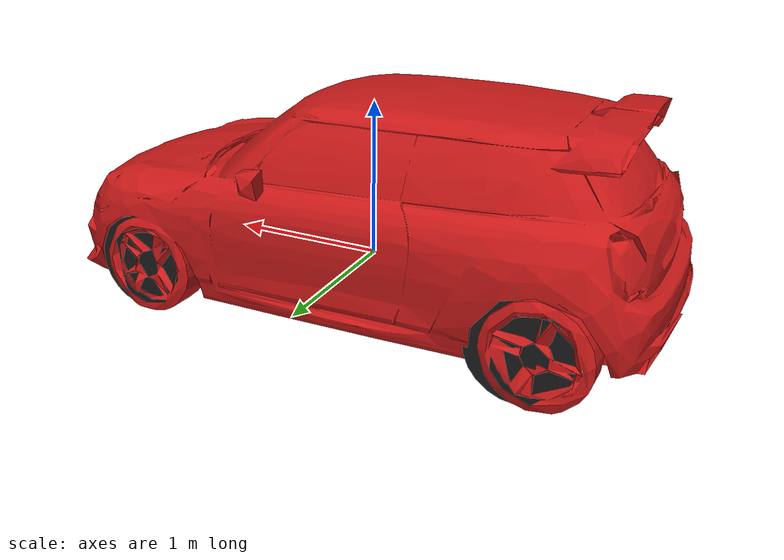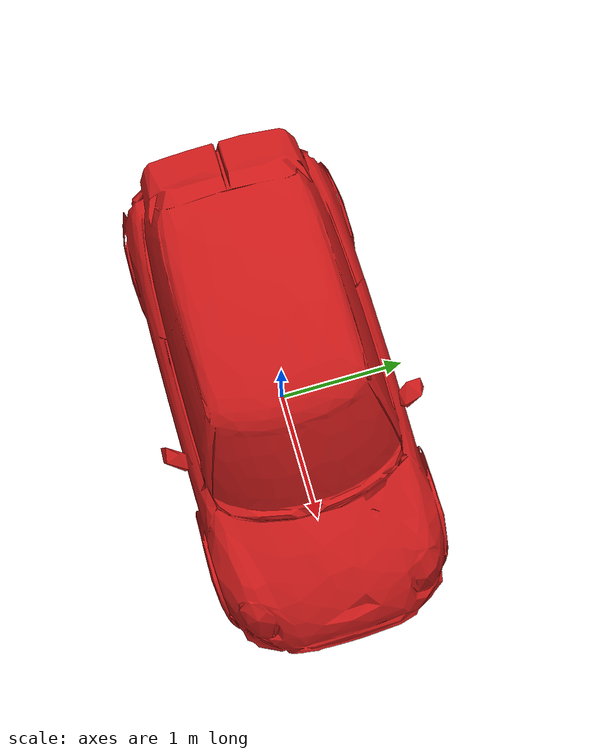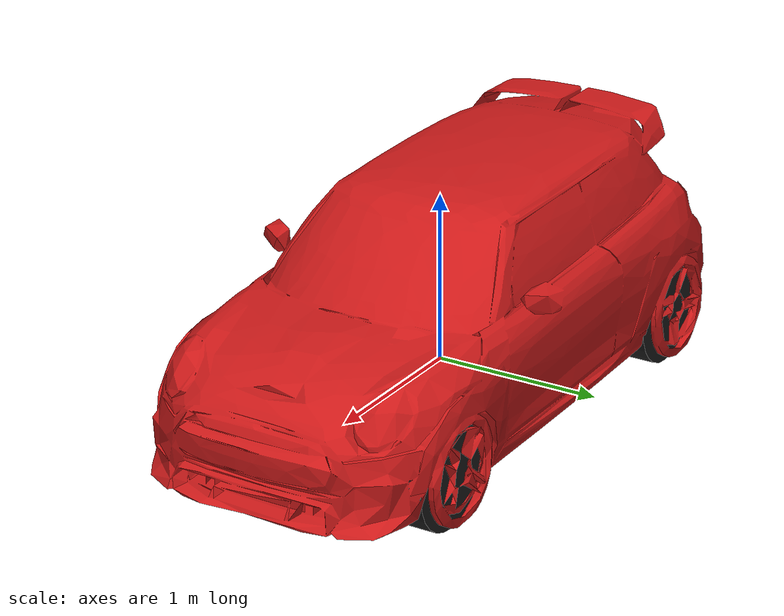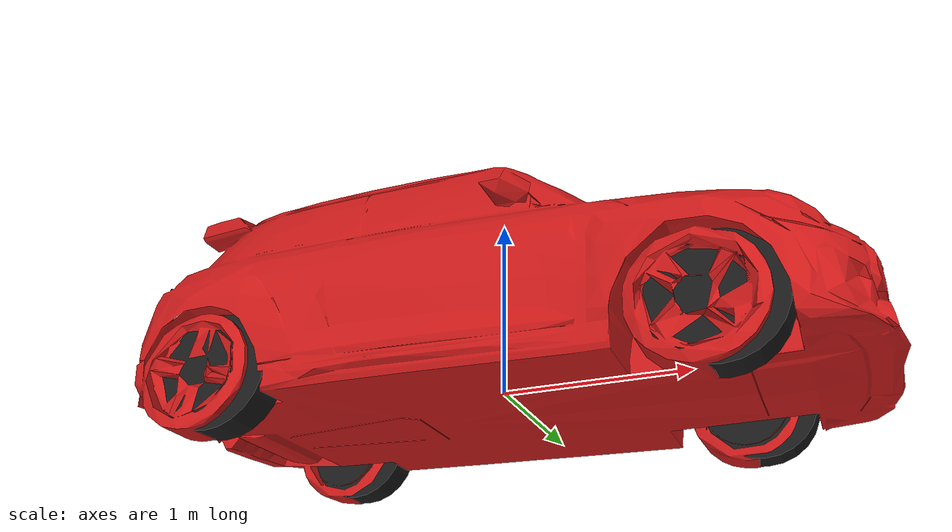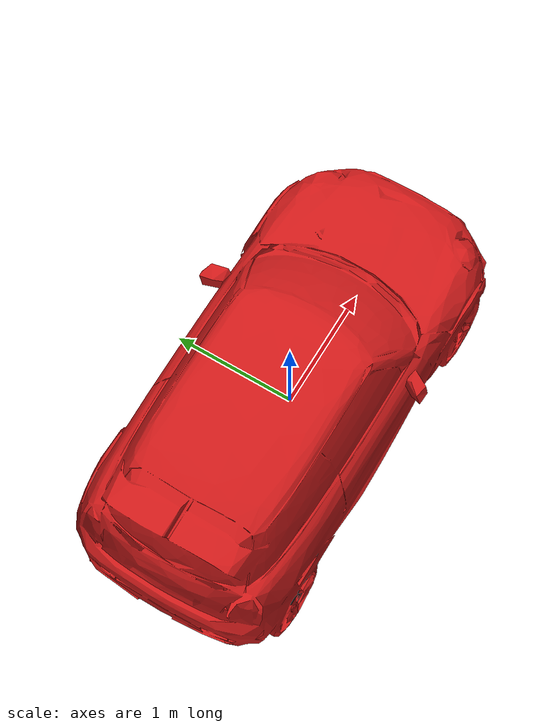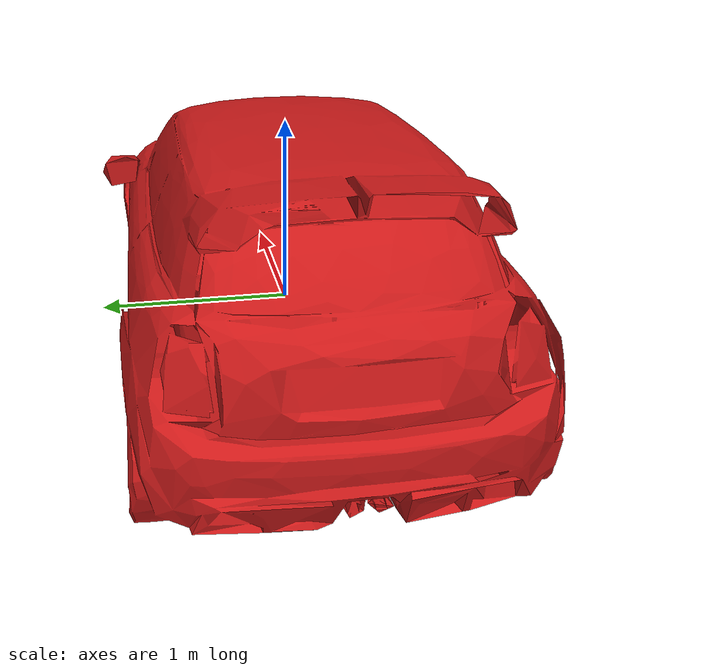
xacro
<?xml version="1.0"?>
<robot name="mini_r56" xmlns:xacro="http://ros.org/wiki/xacro">

  <!-- 1. VEHICLE DIMENSIONS & CONSTANTS                                      -->
  <xacro:property name="wheelbase" value="2.467"/>
  <xacro:property name="track_width_front" value="1.459"/>
  <xacro:property name="track_width_rear" value="1.467"/>
  <xacro:property name="wheel_radius" value="0.3043"/>
  <xacro:property name="wheel_width" value="0.175"/>
  <xacro:property name="wheel_mass" value="15.0"/>

  <!-- Cylindrical Inertia Macro -->
  <xacro:macro name="cylinder_inertia" params="m r h">
    <inertial>
      <mass value="${m}"/>
      <inertia ixx="${(m/12) * (3*r*r + h*h)}" ixy="0" ixz="0"
               iyy="${(m/12) * (3*r*r + h*h)}" iyz="0"
               izz="${(m/2) * (r*r)}"/>
    </inertial>
  </xacro:macro>

  <!-- 2. CORE CHASSIS (BASE LINK)                                            -->
  <link name="base_link">
    <!-- Visual Mesh -->
    <visual>
      <!-- RPY aligns the orientation. XYZ resets the CAD origin to center -->
      <origin xyz="0 0 -0.3" rpy="1.5708 0 1.5708"/>
      <geometry>
        <mesh filename="file://$(find mini_r56_gazebo)/meshes/Mini_body.stl" scale="1 1 1"/>
      </geometry>
      <material name="chili_red"><color rgba="0.8 0.1 0.1 1.0"/></material>
    </visual>

    <!-- Kinematic Collision Box -->
<!-- Kinematic Collision Box -->
    <collision>
      <origin xyz="0 0 0.5" rpy="0 0 0"/>
      <geometry>
        <!-- Shrunk strictly to fit between the front/rear and left/right axles -->
        <box size="2.0 1.0 0.8"/>
      </geometry>
    </collision>
    <!-- Inertial Tensor: Optimized for R56 Dynamics -->
    <inertial>
        <!-- CoM shifted forward (engine bias) and dramatically lowered (eliminates body roll) -->
        <origin xyz="${wheelbase * 0.15} 0 0.05" rpy="0 0 0"/>
        <mass value="1150.0"/>
        <!-- Drastically reduced moment of inertia to eliminate sluggish rotation -->
        <inertia ixx="250.0" ixy="0.0" ixz="0.0" iyy="900.0" iyz="0.0" izz="1100.0"/>
    </inertial>
  </link>

  <!-- 3. FRONT STEERED & DRIVEN WHEELS (MACPHERSON KINEMATICS)               -->
  <xacro:macro name="front_wheel" params="prefix y_offset">
    <!-- Steering Knuckle (Virtual Link) -->
    <link name="${prefix}_steer_link">
      <inertial>
        <mass value="5.0"/>
        <inertia ixx="0.1" ixy="0" ixz="0" iyy="0.1" iyz="0" izz="0.1"/>
      </inertial>
    </link>

<!-- Steering Joint: Zero friction loss for instant go-kart turn-in -->
    <joint name="${prefix}_steering_joint" type="revolute">
      <parent link="base_link"/>
      <child link="${prefix}_steer_link"/>
      <origin xyz="${wheelbase/2} ${y_offset} 0" rpy="0 0 0"/>
      <axis xyz="0 0 1"/>
      <dynamics damping="0.0" friction="0.0"/>
      <!-- Steering agility maximized for instant rack response -->
      <limit lower="-0.88" upper="0.88" effort="10000.0" velocity="1000.0"/>
    </joint>

    <!-- Wheel Physical Link -->
    <link name="${prefix}_wheel_link">
      <visual>
        <origin xyz="0 0 0" rpy="1.5708 0 0"/>
        <geometry><cylinder radius="${wheel_radius}" length="${wheel_width}"/></geometry>
        <material name="black"><color rgba="0.1 0.1 0.1 1.0"/></material>
      </visual>
    <!-- Sphere collision hack for infinite lateral stability -->
        <collision>
            <origin xyz="0 0 0" rpy="0 0 0"/>
            <geometry>
            <sphere radius="${wheel_radius}"/>
            </geometry>
        </collision>
      <xacro:cylinder_inertia m="${wheel_mass}" r="${wheel_radius}" h="${wheel_width}"/>
    </link>

    <!-- Drive Joint (Continuous: Y-Axis) -->
<!-- Drive Joint (Continuous: Y-Axis) -->
    <joint name="${prefix}_drive_joint" type="continuous">
      <parent link="${prefix}_steer_link"/>
      <child link="${prefix}_wheel_link"/>
      <origin xyz="0 0 0" rpy="0 0 0"/>
      <axis xyz="0 1 0"/>
      <!-- CRITICAL FIX: Granting 10,000 Nm of torque to overcome 1150kg inertia -->
<limit effort="50000.0" velocity="2000.0"/>
    </joint>
    <!-- Tire Friction & Contact Physics -->
<!-- Tire Dynamics: High lateral grip & stiffness -->
<!-- Tire Dynamics: High lateral grip & stiff sidewall -->
    <gazebo reference="${prefix}_wheel_link">
      <mu1>20.0</mu1>
      <mu2>20.0</mu2>
      <!-- Increased stiffness (kp) and tuned damping (kd) to simulate sport suspension -->
      <kp>50000000.0</kp>
      <kd>5000.0</kd>
      <minDepth>0.005</minDepth>
      <fdir1>1 0 0</fdir1>
    </gazebo>
  </xacro:macro>

  <xacro:front_wheel prefix="front_left" y_offset="${track_width_front/2}"/>
  <xacro:front_wheel prefix="front_right" y_offset="${-track_width_front/2}"/>

  <!-- 4. REAR TRAILING WHEELS (Z-AXLE MULTI-LINK KINEMATICS)                 -->
  <xacro:macro name="rear_wheel" params="prefix y_offset">
    <link name="${prefix}_wheel_link">
      <visual>
        <origin xyz="0 0 0" rpy="1.5708 0 0"/>
        <geometry><cylinder radius="${wheel_radius}" length="${wheel_width}"/></geometry>
        <material name="black"><color rgba="0.1 0.1 0.1 1.0"/></material>
      </visual>
<!-- Sphere collision hack for infinite lateral stability -->
      <collision>
        <origin xyz="0 0 0" rpy="0 0 0"/>
        <geometry>
          <sphere radius="${wheel_radius}"/>
        </geometry>
      </collision>
      <xacro:cylinder_inertia m="${wheel_mass}" r="${wheel_radius}" h="${wheel_width}"/>
    </link>

    <!-- Free-Spinning Joint (Continuous: Y-Axis) -->
<!-- Free-Spinning Joint (Continuous: Y-Axis) -->
    <joint name="${prefix}_drive_joint" type="continuous">
      <parent link="base_link"/>
      <child link="${prefix}_wheel_link"/>
      <origin xyz="${-wheelbase/2} ${y_offset} 0" rpy="0 0 0"/>
      <axis xyz="0 1 0"/>
      <!-- CRITICAL FIX: Granting 10,000 Nm of torque -->
      <limit effort="20000.0" velocity="300.0"/>
    </joint>
    <!-- Tire Friction & Contact Physics -->
<!-- Tire Dynamics: High lateral grip & stiffness -->
<!-- Tire Dynamics: High lateral grip & stiff sidewall -->
    <gazebo reference="${prefix}_wheel_link">
      <mu1>30.0</mu1>
      <mu2>30.0</mu2>
      <!-- Increased stiffness (kp) and tuned damping (kd) to simulate sport suspension -->
      <kp>50000000.0</kp>
      <kd>5000.0</kd>
      <minDepth>0.005</minDepth>
      <fdir1>1 0 0</fdir1>
    </gazebo>
  </xacro:macro>

  <xacro:rear_wheel prefix="rear_left" y_offset="${track_width_rear/2}"/>
  <xacro:rear_wheel prefix="rear_right" y_offset="${-track_width_rear/2}"/>

  <!-- 5. GAZEBO HARMONIC ACKERMANN PLUGIN                                    -->
  <gazebo>
    <plugin filename="libgz-sim-ackermann-steering-system.so" name="gz::sim::systems::AckermannSteering">
      <!-- ... existing joint limits ... -->
      <odom_publish_frequency>50</odom_publish_frequency>
      <!-- Shifted to a dedicated namespace to avoid Prius interference -->
      <topic>/mini/cmd_vel</topic>
    </plugin>
  </gazebo>
</robot>
